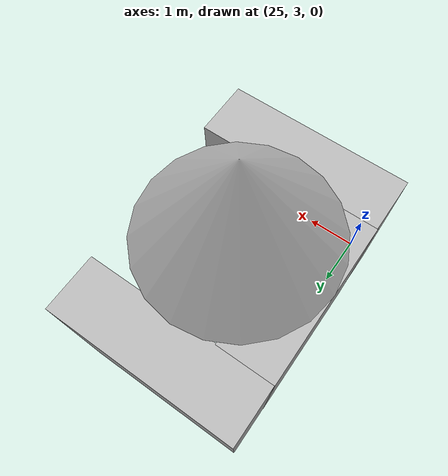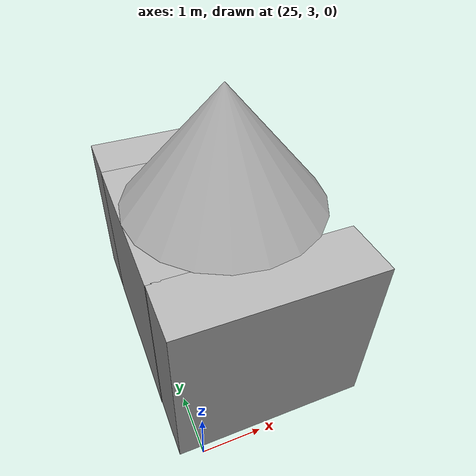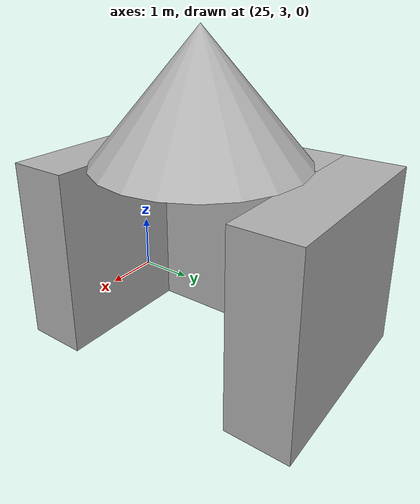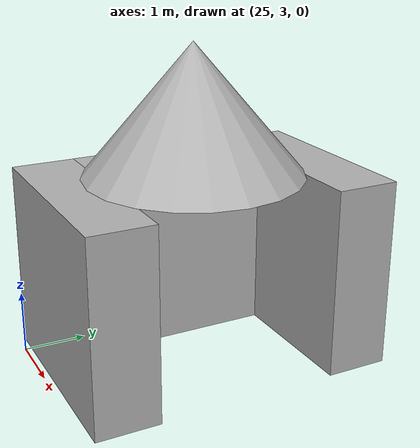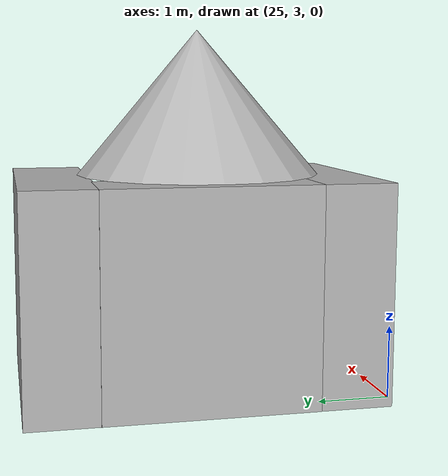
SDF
<?xml version='1.0'?>
<sdf version='1.6'>
  <model name='box_0'>
  <pose>26.280958351717622 3.5985589132294855 1.5 0 0 0</pose>
  <link name='box_link'>
    <inertial>
      <inertia>
        <ixx>0.16666</ixx>
        <ixy>0</ixy>
        <ixz>0</ixz>
        <iyy>0.16666</iyy>
        <iyz>0</iyz>
        <izz>0.16666</izz>
      </inertia>
      <mass>1</mass>
      <pose>0 0 0 0 0 0</pose>
    </inertial>
    <collision name='box_collision'>
      <geometry>
        <box>
          <size>3.2999999999999998 1 3</size>
        </box>
      </geometry>
      <surface>
        <friction>
          <ode/>
        </friction>
        <bounce/>
        <contact/>
      </surface>
    </collision>
    <visual name='box_visual'>
      <geometry>
        <box>
          <size>3.2999999999999998 1 3</size>
        </box>
      </geometry>
      <material>
        <ambient>0.300000012 0.300000012 0.300000012 1</ambient>
        <diffuse>0.699999988 0.699999988 0.699999988 1</diffuse>
        <specular>1 1 1 1</specular>
      </material>
    </visual>
    <pose>0 0 0 0 0 0</pose>
    <enable_wind>false</enable_wind>
  </link>
  <static>false</static>
  <self_collide>false</self_collide>
</model>
<model name='box_1'>
  <pose>25.124389120262173 5.530684439663352 1.5 0 0 0</pose>
  <link name='box_link'>
    <inertial>
      <inertia>
        <ixx>0.16666</ixx>
        <ixy>0</ixy>
        <ixz>0</ixz>
        <iyy>0.16666</iyy>
        <iyz>0</iyz>
        <izz>0.16666</izz>
      </inertia>
      <mass>1</mass>
      <pose>0 0 0 0 0 0</pose>
    </inertial>
    <collision name='box_collision'>
      <geometry>
        <box>
          <size>1 2.8999999999999999 3</size>
        </box>
      </geometry>
      <surface>
        <friction>
          <ode/>
        </friction>
        <bounce/>
        <contact/>
      </surface>
    </collision>
    <visual name='box_visual'>
      <geometry>
        <box>
          <size>1 2.8999999999999999 3</size>
        </box>
      </geometry>
      <material>
        <ambient>0.300000012 0.300000012 0.300000012 1</ambient>
        <diffuse>0.699999988 0.699999988 0.699999988 1</diffuse>
        <specular>1 1 1 1</specular>
      </material>
    </visual>
    <pose>0 0 0 0 0 0</pose>
    <enable_wind>false</enable_wind>
  </link>
  <static>false</static>
  <self_collide>false</self_collide>
</model>
<model name='box_2'>
  <pose>26.27839296780649 7.458628188131829 1.5 0 0 0</pose>
  <link name='box_link'>
    <inertial>
      <inertia>
        <ixx>0.16666</ixx>
        <ixy>0</ixy>
        <ixz>0</ixz>
        <iyy>0.16666</iyy>
        <iyz>0</iyz>
        <izz>0.16666</izz>
      </inertia>
      <mass>1</mass>
      <pose>0 0 0 0 0 0</pose>
    </inertial>
    <collision name='box_collision'>
      <geometry>
        <box>
          <size>3.2999999999999998 1 3</size>
        </box>
      </geometry>
      <surface>
        <friction>
          <ode/>
        </friction>
        <bounce/>
        <contact/>
      </surface>
    </collision>
    <visual name='box_visual'>
      <geometry>
        <box>
          <size>3.2999999999999998 1 3</size>
        </box>
      </geometry>
      <material>
        <ambient>0.300000012 0.300000012 0.300000012 1</ambient>
        <diffuse>0.699999988 0.699999988 0.699999988 1</diffuse>
        <specular>1 1 1 1</specular>
      </material>
    </visual>
    <pose>0 0 0 0 0 0</pose>
    <enable_wind>false</enable_wind>
  </link>
  <static>false</static>
  <self_collide>false</self_collide>
</model>
<model name='cone'>
  <pose>26.316259560213716 5.412128458975335 4.025538444519043 0 0 0</pose>
  <link name='cone_link'>
    <inertial>
      <inertia>
        <ixx>0.074999999999999997</ixx>
        <ixy>0</ixy>
        <ixz>0</ixz>
        <iyy>0.074999999999999997</iyy>
        <iyz>0</iyz>
        <izz>0.074999999999999997</izz>
      </inertia>
      <mass>1</mass>
      <pose>0 0 0 0 0 0</pose>
    </inertial>
    <collision name='cone_collision'>
      <geometry>
        <cone>
          <radius>2.5</radius>
          <length>2</length>
        </cone>
      </geometry>
      <surface>
        <friction>
          <ode/>
        </friction>
        <bounce/>
        <contact/>
      </surface>
    </collision>
    <visual name='cone_visual'>
      <geometry>
        <cone>
          <radius>1.7</radius>
          <length>2</length>
        </cone>
      </geometry>
      <material>
        <ambient>0.300000012 0.300000012 0.300000012 1</ambient>
        <diffuse>0.699999988 0.699999988 0.699999988 1</diffuse>
        <specular>1 1 1 1</specular>
      </material>
    </visual>
    <pose>0 0 0 0 0 0</pose>
    <enable_wind>false</enable_wind>
  </link>
  <static>false</static>
  <self_collide>false</self_collide>
</model>
</sdf>
